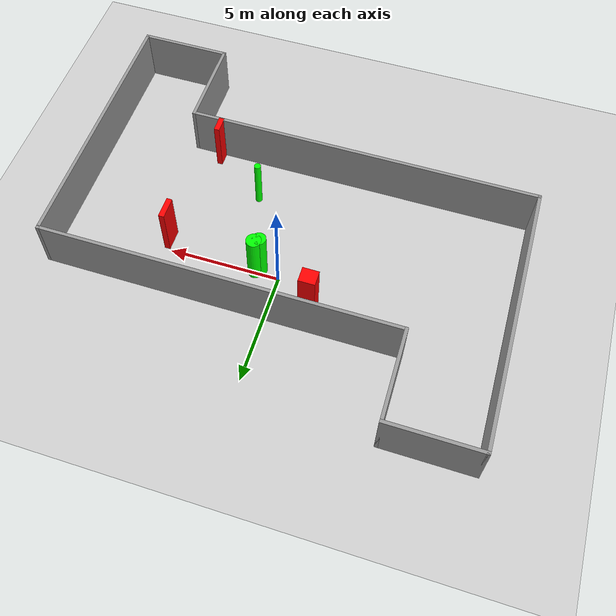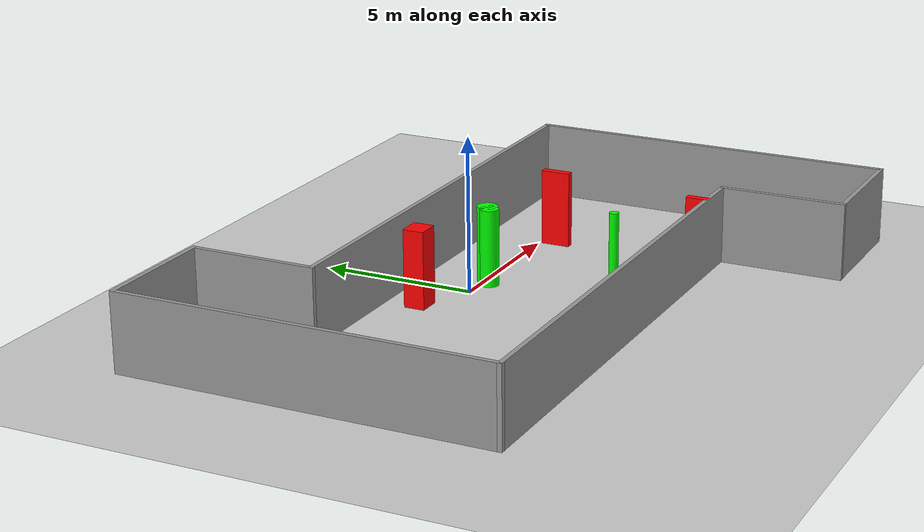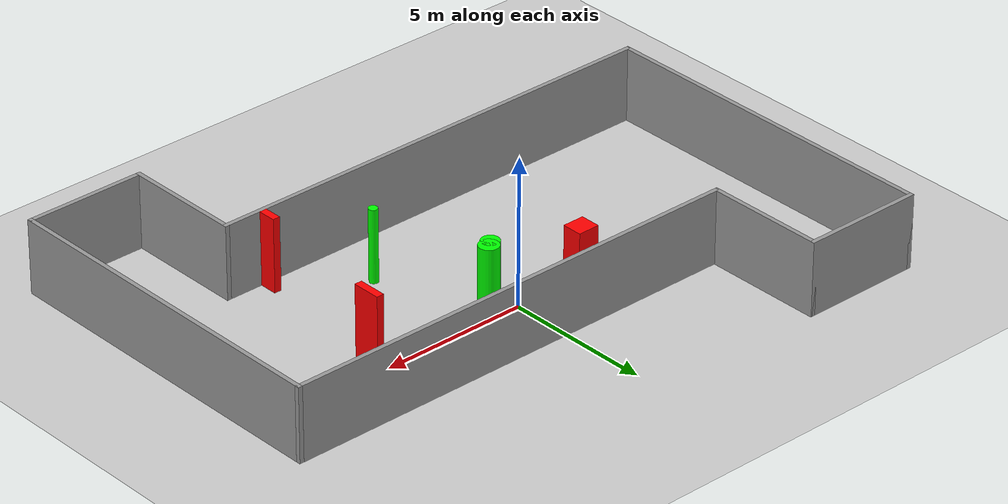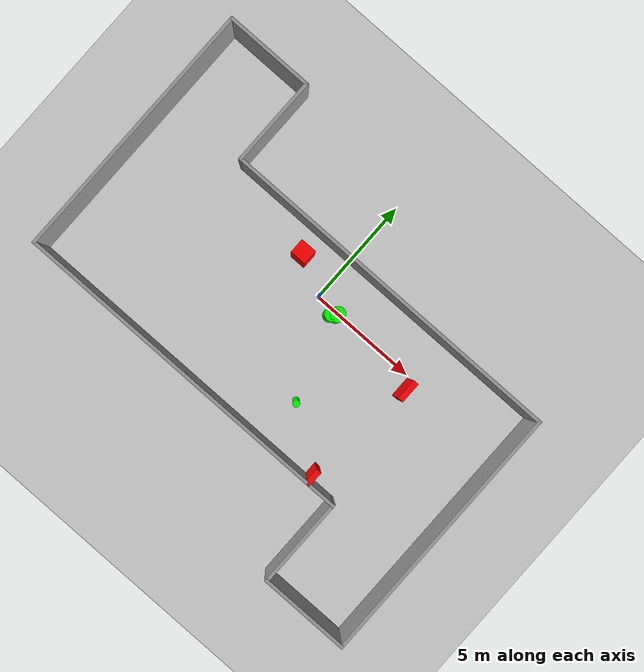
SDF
<sdf version="1.7">
 <world name="default">
  <light name="sun" type="directional">
   <pose>0 0 10 0 -0 0</pose>
   <diffuse>0.8 0.8 0.8 1</diffuse>
   <specular>0.2 0.2 0.2 1</specular>
   <attenuation>
    <range>1000</range>
    <constant>0.9</constant>
    <linear>0.01</linear>
    <quadratic>0.001</quadratic>
   </attenuation>
   <direction>-0.5 0.1 -0.9</direction>
   <spot><inner_angle>0</inner_angle><outer_angle>0</outer_angle><falloff>0</falloff></spot>
  </light>
  <model name="ground_plane">
   <static>1</static>
   <link name="link">
    <collision name="collision">
     <geometry><plane><normal>0 0 1</normal><size>100 100</size></plane></geometry>
     <surface>
      <contact><collide_bitmask>65535</collide_bitmask></contact>
      <friction><ode><mu>100</mu><mu2>50</mu2></ode></friction>
     </surface>
    </collision>
    <visual name="visual">
     <cast_shadows>0</cast_shadows>
     <geometry><plane><normal>0 0 1</normal><size>100 100</size></plane></geometry>
     <material>
      <script><uri>file://media/materials/scripts/gazebo.material</uri><name>Gazebo/Grey</name></script>
     </material>
    </visual>
   </link>
  </model>
  <gravity>0 0 -9.8</gravity>
  <magnetic_field>6e-06 2.3e-05 -4.2e-05</magnetic_field>
  <atmosphere type="adiabatic"/>
  <physics type="ode">
   <max_step_size>0.001</max_step_size>
   <real_time_factor>1</real_time_factor>
   <real_time_update_rate>1000</real_time_update_rate>
  </physics>
  <scene><ambient>0.4 0.4 0.4 1</ambient><background>0.7 0.7 0.7 1</background><shadows>1</shadows></scene>
  <spherical_coordinates>
   <surface_model>EARTH_WGS84</surface_model>
   <latitude_deg>0</latitude_deg>
   <longitude_deg>0</longitude_deg>
   <elevation>0</elevation>
   <heading_deg>0</heading_deg>
  </spherical_coordinates>
  <model name="my_base_walls">
   <link name="Wall_13">
    <collision name="Wall_13_Collision">
     <geometry><box><size>12.15 0.15 2.5</size></box></geometry>
     <pose>0 0 1.25 0 -0 0</pose>
    </collision>
    <visual name="Wall_13_Visual">
     <pose>0 0 1.25 0 -0 0</pose>
     <geometry><box><size>12.15 0.15 2.5</size></box></geometry>
     <material>
      <script><uri>file://media/materials/scripts/gazebo.material</uri><name>Gazebo/Grey</name></script>
      <ambient>1 1 1 1</ambient>
     </material>
     <meta><layer>0</layer></meta>
    </visual>
    <pose>10 -2 0 0 -0 1.5708</pose>
   </link>
   <link name="Wall_15">
    <collision name="Wall_15_Collision">
     <geometry><box><size>16.15 0.15 2.5</size></box></geometry>
     <pose>0 0 1.25 0 -0 0</pose>
    </collision>
    <visual name="Wall_15_Visual">
     <pose>0 0 1.25 0 -0 0</pose>
     <geometry><box><size>16.15 0.15 2.5</size></box></geometry>
     <material>
      <script><uri>file://media/materials/scripts/gazebo.material</uri><name>Gazebo/Grey</name></script>
      <ambient>1 1 1 1</ambient>
     </material>
     <meta><layer>0</layer></meta>
    </visual>
    <pose>2 4 0 0 -0 3.14159</pose>
   </link>
   <link name="Wall_17">
    <collision name="Wall_17_Collision">
     <geometry><box><size>4.15 0.15 2.5</size></box></geometry>
     <pose>0 0 1.25 0 -0 0</pose>
    </collision>
    <visual name="Wall_17_Visual">
     <pose>0 0 1.25 0 -0 0</pose>
     <geometry><box><size>4.15 0.15 2.5</size></box></geometry>
     <material>
      <script><uri>file://media/materials/scripts/gazebo.material</uri><name>Gazebo/Grey</name></script>
      <ambient>1 1 1 1</ambient>
     </material>
     <meta><layer>0</layer></meta>
    </visual>
    <pose>6 -6 0 0 -0 -1.5708</pose>
   </link>
   <link name="Wall_19">
    <collision name="Wall_19_Collision">
     <geometry><box><size>12.15 0.15 2.5</size></box></geometry>
     <pose>0 0 1.25 0 -0 0</pose>
    </collision>
    <visual name="Wall_19_Visual">
     <pose>0 0 1.25 0 -0 0</pose>
     <geometry><box><size>12.15 0.15 2.5</size></box></geometry>
     <material>
      <script><uri>file://media/materials/scripts/gazebo.material</uri><name>Gazebo/Grey</name></script>
      <ambient>1 1 1 1</ambient>
     </material>
     <meta><layer>0</layer></meta>
    </visual>
    <pose>-10 2 0 0 -0 1.5708</pose>
   </link>
   <link name="Wall_21">
    <collision name="Wall_21_Collision">
     <geometry><box><size>4.15 0.15 2.5</size></box></geometry>
     <pose>0 0 1.25 0 -0 0</pose>
    </collision>
    <visual name="Wall_21_Visual">
     <pose>0 0 1.25 0 -0 0</pose>
     <geometry><box><size>4.15 0.15 2.5</size></box></geometry>
     <material>
      <script><uri>file://media/materials/scripts/gazebo.material</uri><name>Gazebo/Grey</name></script>
      <ambient>1 1 1 1</ambient>
     </material>
     <meta><layer>0</layer></meta>
    </visual>
    <pose>-8 8 0 0 -0 0</pose>
   </link>
   <link name="Wall_23">
    <collision name="Wall_23_Collision">
     <geometry><box><size>4.15 0.15 2.5</size></box></geometry>
     <pose>0 0 1.25 0 -0 0</pose>
    </collision>
    <visual name="Wall_23_Visual">
     <pose>0 0 1.25 0 -0 0</pose>
     <geometry><box><size>4.15 0.15 2.5</size></box></geometry>
     <material>
      <script><uri>file://media/materials/scripts/gazebo.material</uri><name>Gazebo/Grey</name></script>
      <ambient>1 1 1 1</ambient>
     </material>
     <meta><layer>0</layer></meta>
    </visual>
    <pose>-6 6 0 0 -0 -1.5708</pose>
   </link>
   <link name="Wall_25">
    <collision name="Wall_25_Collision">
     <geometry><box><size>4.15 0.15 2.5</size></box></geometry>
     <pose>0 0 1.25 0 -0 0</pose>
    </collision>
    <visual name="Wall_25_Visual">
     <pose>0 0 1.25 0 -0 0</pose>
     <geometry><box><size>4.15 0.15 2.5</size></box></geometry>
     <material>
      <script><uri>file://media/materials/scripts/gazebo.material</uri><name>Gazebo/Grey</name></script>
      <ambient>1 1 1 1</ambient>
     </material>
     <meta><layer>0</layer></meta>
    </visual>
    <pose>8 -8 0 0 -0 0</pose>
   </link>
   <link name="Wall_9">
    <collision name="Wall_9_Collision">
     <geometry><box><size>16.15 0.15 2.5</size></box></geometry>
     <pose>0 0 1.25 0 -0 0</pose>
    </collision>
    <visual name="Wall_9_Visual">
     <pose>0 0 1.25 0 -0 0</pose>
     <geometry><box><size>16.15 0.15 2.5</size></box></geometry>
     <material>
      <script><uri>file://media/materials/scripts/gazebo.material</uri><name>Gazebo/Grey</name></script>
      <ambient>1 1 1 1</ambient>
     </material>
     <meta><layer>0</layer></meta>
    </visual>
    <pose>-2 -4 0 0 -0 3.14159</pose>
   </link>
   <static>1</static>
   <pose>-0 -2 0 0 -0 0</pose>
  </model>
  <model name="cylinder1">
   <static>1</static>
   <link name="link">
    <inertial>
     <mass>1</mass>
     <inertia><ixx>0.5</ixx><ixy>0</ixy><ixz>0</ixz><iyy>0.5</iyy><iyz>0</iyz><izz>1</izz></inertia>
    </inertial>
    <collision name="collision">
     <geometry><cylinder><radius>0.33384851103559915</radius><length>2.5</length></cylinder></geometry>
    </collision>
    <visual name="visual">
     <geometry><cylinder><radius>0.33384851103559915</radius><length>2.5</length></cylinder></geometry>
     <material>
      <ambient>0 1 0 1</ambient>
      <diffuse>0 1 0 1</diffuse>
      <specular>0.1 0.1 0.1 1</specular>
      <emissive>0 0 0 0</emissive>
     </material>
    </visual>
   </link>
   <pose>1.0764630783730205 -0.10424814050426345 1.25 0 0 0</pose>
  </model>
  <model name="cylinder2">
   <static>1</static>
   <link name="link">
    <inertial>
     <mass>1</mass>
     <inertia><ixx>0.5</ixx><ixy>0</ixy><ixz>0</ixz><iyy>0.5</iyy><iyz>0</iyz><izz>1</izz></inertia>
    </inertial>
    <collision name="collision">
     <geometry><cylinder><radius>0.1520886814515903</radius><length>2.5</length></cylinder></geometry>
    </collision>
    <visual name="visual">
     <geometry><cylinder><radius>0.1520886814515903</radius><length>2.5</length></cylinder></geometry>
     <material>
      <ambient>0 1 0 1</ambient>
      <diffuse>0 1 0 1</diffuse>
      <specular>0.1 0.1 0.1 1</specular>
      <emissive>0 0 0 0</emissive>
     </material>
    </visual>
   </link>
   <pose>2.190563177321245 -3.8970296739326837 1.25 0 0 0</pose>
  </model>
  <model name="cylinder3">
   <static>1</static>
   <link name="link">
    <inertial>
     <mass>1</mass>
     <inertia><ixx>0.5</ixx><ixy>0</ixy><ixz>0</ixz><iyy>0.5</iyy><iyz>0</iyz><izz>1</izz></inertia>
    </inertial>
    <collision name="collision">
     <geometry><cylinder><radius>0.3038860882576715</radius><length>2.5</length></cylinder></geometry>
    </collision>
    <visual name="visual">
     <geometry><cylinder><radius>0.3038860882576715</radius><length>2.5</length></cylinder></geometry>
     <material>
      <ambient>0 1 0 1</ambient>
      <diffuse>0 1 0 1</diffuse>
      <specular>0.1 0.1 0.1 1</specular>
      <emissive>0 0 0 0</emissive>
     </material>
    </visual>
   </link>
   <pose>0.8815449389444092 -0.2594125682591981 1.25 0 0 0</pose>
  </model>
  <model name="box1">
   <static>1</static>
   <link name="link">
    <inertial>
     <mass>1</mass>
     <inertia><ixx>0.083</ixx><ixy>0</ixy><ixz>0</ixz><iyy>0.083</iyy><iyz>0</iyz><izz>0.083</izz></inertia>
    </inertial>
    <collision name="collision">
     <geometry><box><size>0.2465807299243931 0.7146082467042514 2.5</size></box></geometry>
    </collision>
    <visual name="visual">
     <geometry><box><size>0.2465807299243931 0.7146082467042514 2.5</size></box></geometry>
     <material>
      <ambient>1 0 0 1</ambient>
      <diffuse>1 0 0 1</diffuse>
      <specular>0.1 0.1 0.1 1</specular>
      <emissive>0 0 0 0</emissive>
     </material>
    </visual>
    <sensor name="my_contact" type="contact">
     <contact><collision>box_collision</collision><topic>__default_topic__</topic></contact>
    </sensor>
   </link>
   <pose>4.6579386472872955 -5.682478662009686 1.25 0 0 0</pose>
  </model>
  <model name="box2">
   <static>1</static>
   <link name="link">
    <inertial>
     <mass>1</mass>
     <inertia><ixx>0.083</ixx><ixy>0</ixy><ixz>0</ixz><iyy>0.083</iyy><iyz>0</iyz><izz>0.083</izz></inertia>
    </inertial>
    <collision name="collision">
     <geometry><box><size>0.25070245401190416 0.9569949073034659 2.5</size></box></geometry>
    </collision>
    <visual name="visual">
     <geometry><box><size>0.25070245401190416 0.9569949073034659 2.5</size></box></geometry>
     <material>
      <ambient>1 0 0 1</ambient>
      <diffuse>1 0 0 1</diffuse>
      <specular>0.1 0.1 0.1 1</specular>
      <emissive>0 0 0 0</emissive>
     </material>
    </visual>
    <sensor name="my_contact" type="contact">
     <contact><collision>box_collision</collision><topic>__default_topic__</topic></contact>
    </sensor>
   </link>
   <pose>5.231736037942605 -0.5549721359076001 1.25 0 0 0</pose>
  </model>
  <model name="box3">
   <static>1</static>
   <link name="link">
    <inertial>
     <mass>1</mass>
     <inertia><ixx>0.083</ixx><ixy>0</ixy><ixz>0</ixz><iyy>0.083</iyy><iyz>0</iyz><izz>0.083</izz></inertia>
    </inertial>
    <collision name="collision">
     <geometry><box><size>0.7366399519126199 0.6713749990606165 2.5</size></box></geometry>
    </collision>
    <visual name="visual">
     <geometry><box><size>0.7366399519126199 0.6713749990606165 2.5</size></box></geometry>
     <material>
      <ambient>1 0 0 1</ambient>
      <diffuse>1 0 0 1</diffuse>
      <specular>0.1 0.1 0.1 1</specular>
      <emissive>0 0 0 0</emissive>
     </material>
    </visual>
    <sensor name="my_contact" type="contact">
     <contact><collision>box_collision</collision><topic>__default_topic__</topic></contact>
    </sensor>
   </link>
   <pose>-1.6365744958725905 0.8658490545354196 1.25 0 0 0</pose>
  </model>
 </world>
</sdf>
